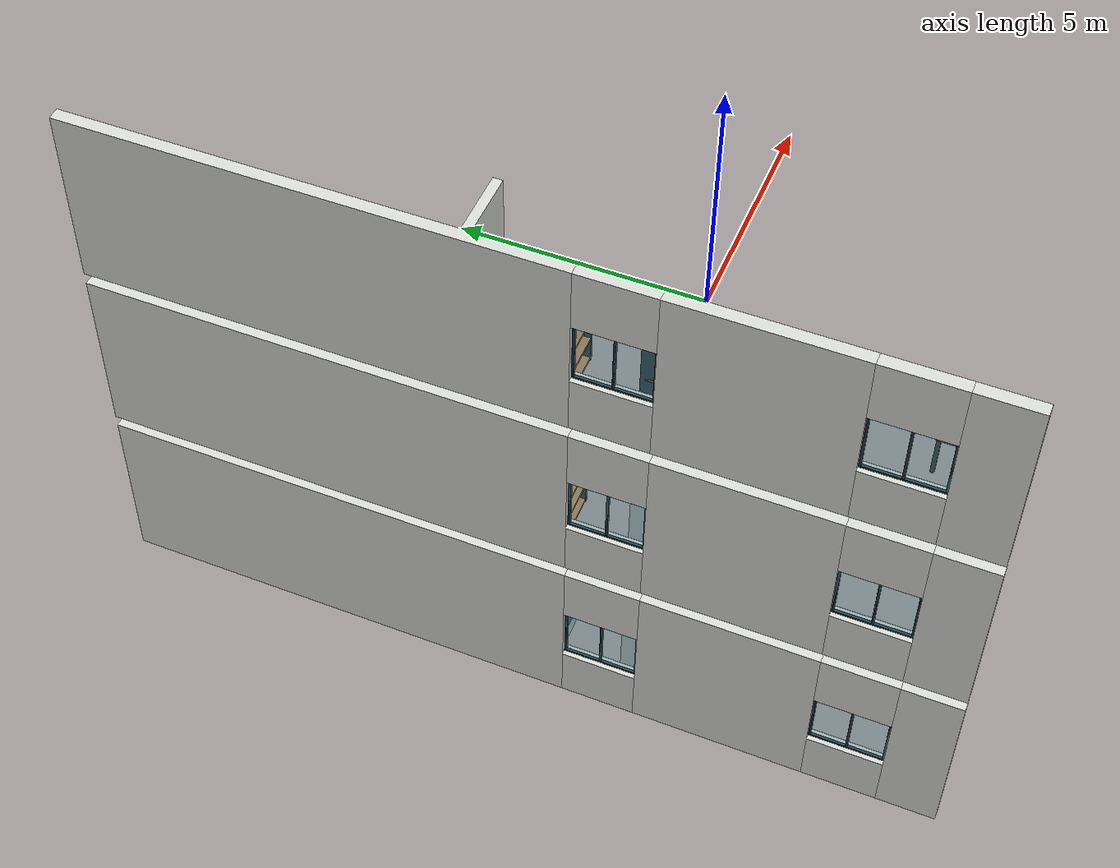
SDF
<sdf version="1.6">
 <world name="three_floor">
  <model name="f1_wall_001">
   <static>true</static>
   <pose>-8.9 0 1.5 0 0 0</pose>
   <link name="f1_wall_001_link">
    <collision name="f1_wall_001_link_panel_0_collision">
     <pose>0 -6.425 0 0 0 0</pose>
     <geometry><box><size>0.2 0.95 3</size></box></geometry>
    </collision>
    <visual name="f1_wall_001_link_panel_0_visual">
     <pose>0 -6.425 0 0 0 0</pose>
     <geometry><box><size>0.2 0.95 3</size></box></geometry>
     <material><ambient>.84 .85 .83 1</ambient><diffuse>.84 .85 .83 1</diffuse></material>
    </visual>
    <collision name="f1_wall_001_link_sill_0_collision">
     <pose>0 -5.35 -1.025 0 0 0</pose>
     <geometry><box><size>0.2 1.2 0.95</size></box></geometry>
    </collision>
    <visual name="f1_wall_001_link_sill_0_visual">
     <pose>0 -5.35 -1.025 0 0 0</pose>
     <geometry><box><size>0.2 1.2 0.95</size></box></geometry>
     <material><ambient>.84 .85 .83 1</ambient><diffuse>.84 .85 .83 1</diffuse></material>
    </visual>
    <collision name="f1_wall_001_link_header_0_collision">
     <pose>0 -5.35 1 0 0 0</pose>
     <geometry><box><size>0.2 1.2 1</size></box></geometry>
    </collision>
    <visual name="f1_wall_001_link_header_0_visual">
     <pose>0 -5.35 1 0 0 0</pose>
     <geometry><box><size>0.2 1.2 1</size></box></geometry>
     <material><ambient>.84 .85 .83 1</ambient><diffuse>.84 .85 .83 1</diffuse></material>
    </visual>
    <collision name="f1_wall_001_link_panel_1_collision">
     <pose>0 -3.35 0 0 0 0</pose>
     <geometry><box><size>0.2 2.8 3</size></box></geometry>
    </collision>
    <visual name="f1_wall_001_link_panel_1_visual">
     <pose>0 -3.35 0 0 0 0</pose>
     <geometry><box><size>0.2 2.8 3</size></box></geometry>
     <material><ambient>.84 .85 .83 1</ambient><diffuse>.84 .85 .83 1</diffuse></material>
    </visual>
    <collision name="f1_wall_001_link_sill_1_collision">
     <pose>0 -1.35 -1.025 0 0 0</pose>
     <geometry><box><size>0.2 1.2 0.95</size></box></geometry>
    </collision>
    <visual name="f1_wall_001_link_sill_1_visual">
     <pose>0 -1.35 -1.025 0 0 0</pose>
     <geometry><box><size>0.2 1.2 0.95</size></box></geometry>
     <material><ambient>.84 .85 .83 1</ambient><diffuse>.84 .85 .83 1</diffuse></material>
    </visual>
    <collision name="f1_wall_001_link_header_1_collision">
     <pose>0 -1.35 1 0 0 0</pose>
     <geometry><box><size>0.2 1.2 1</size></box></geometry>
    </collision>
    <visual name="f1_wall_001_link_header_1_visual">
     <pose>0 -1.35 1 0 0 0</pose>
     <geometry><box><size>0.2 1.2 1</size></box></geometry>
     <material><ambient>.84 .85 .83 1</ambient><diffuse>.84 .85 .83 1</diffuse></material>
    </visual>
    <collision name="f1_wall_001_link_last_panel_collision">
     <pose>0 3.075 0 0 0 0</pose>
     <geometry><box><size>0.2 7.65 3</size></box></geometry>
    </collision>
    <visual name="f1_wall_001_link_last_panel_visual">
     <pose>0 3.075 0 0 0 0</pose>
     <geometry><box><size>0.2 7.65 3</size></box></geometry>
     <material><ambient>.84 .85 .83 1</ambient><diffuse>.84 .85 .83 1</diffuse></material>
    </visual>
   </link>
  </model>
  <model name="f1_wall_022">
   <static>true</static>
   <pose>-8.275 0.8 1.5 0 0 0</pose>
   <link name="f1_wall_022_link">
    <collision name="f1_wall_022_collision"><geometry><box><size>1.05 0.15 3</size></box></geometry></collision>
    <visual name="f1_wall_022_visual">
     <geometry><box><size>1.05 0.15 3</size></box></geometry>
     <material><ambient>.84 .85 .83 1</ambient><diffuse>.84 .85 .83 1</diffuse></material>
    </visual>
   </link>
  </model>
  <model name="f2_wall_006">
   <static>true</static>
   <pose>-8.9 0 4.7 0 0 0</pose>
   <link name="f2_wall_006_link">
    <collision name="f2_wall_006_link_panel_0_collision">
     <pose>0 -6.425 0 0 0 0</pose>
     <geometry><box><size>0.2 0.95 3</size></box></geometry>
    </collision>
    <visual name="f2_wall_006_link_panel_0_visual">
     <pose>0 -6.425 0 0 0 0</pose>
     <geometry><box><size>0.2 0.95 3</size></box></geometry>
     <material><ambient>.84 .85 .83 1</ambient><diffuse>.84 .85 .83 1</diffuse></material>
    </visual>
    <collision name="f2_wall_006_link_sill_0_collision">
     <pose>0 -5.35 -1.025 0 0 0</pose>
     <geometry><box><size>0.2 1.2 0.95</size></box></geometry>
    </collision>
    <visual name="f2_wall_006_link_sill_0_visual">
     <pose>0 -5.35 -1.025 0 0 0</pose>
     <geometry><box><size>0.2 1.2 0.95</size></box></geometry>
     <material><ambient>.84 .85 .83 1</ambient><diffuse>.84 .85 .83 1</diffuse></material>
    </visual>
    <collision name="f2_wall_006_link_header_0_collision">
     <pose>0 -5.35 1 0 0 0</pose>
     <geometry><box><size>0.2 1.2 1</size></box></geometry>
    </collision>
    <visual name="f2_wall_006_link_header_0_visual">
     <pose>0 -5.35 1 0 0 0</pose>
     <geometry><box><size>0.2 1.2 1</size></box></geometry>
     <material><ambient>.84 .85 .83 1</ambient><diffuse>.84 .85 .83 1</diffuse></material>
    </visual>
    <collision name="f2_wall_006_link_panel_1_collision">
     <pose>0 -3.35 0 0 0 0</pose>
     <geometry><box><size>0.2 2.8 3</size></box></geometry>
    </collision>
    <visual name="f2_wall_006_link_panel_1_visual">
     <pose>0 -3.35 0 0 0 0</pose>
     <geometry><box><size>0.2 2.8 3</size></box></geometry>
     <material><ambient>.84 .85 .83 1</ambient><diffuse>.84 .85 .83 1</diffuse></material>
    </visual>
    <collision name="f2_wall_006_link_sill_1_collision">
     <pose>0 -1.35 -1.025 0 0 0</pose>
     <geometry><box><size>0.2 1.2 0.95</size></box></geometry>
    </collision>
    <visual name="f2_wall_006_link_sill_1_visual">
     <pose>0 -1.35 -1.025 0 0 0</pose>
     <geometry><box><size>0.2 1.2 0.95</size></box></geometry>
     <material><ambient>.84 .85 .83 1</ambient><diffuse>.84 .85 .83 1</diffuse></material>
    </visual>
    <collision name="f2_wall_006_link_header_1_collision">
     <pose>0 -1.35 1 0 0 0</pose>
     <geometry><box><size>0.2 1.2 1</size></box></geometry>
    </collision>
    <visual name="f2_wall_006_link_header_1_visual">
     <pose>0 -1.35 1 0 0 0</pose>
     <geometry><box><size>0.2 1.2 1</size></box></geometry>
     <material><ambient>.84 .85 .83 1</ambient><diffuse>.84 .85 .83 1</diffuse></material>
    </visual>
    <collision name="f2_wall_006_link_last_panel_collision">
     <pose>0 3.075 0 0 0 0</pose>
     <geometry><box><size>0.2 7.65 3</size></box></geometry>
    </collision>
    <visual name="f2_wall_006_link_last_panel_visual">
     <pose>0 3.075 0 0 0 0</pose>
     <geometry><box><size>0.2 7.65 3</size></box></geometry>
     <material><ambient>.84 .85 .83 1</ambient><diffuse>.84 .85 .83 1</diffuse></material>
    </visual>
   </link>
  </model>
  <model name="f2_wall_022">
   <static>true</static>
   <pose>-8.275 0.8 4.7 0 0 0</pose>
   <link name="f2_wall_022_link">
    <collision name="f2_wall_022_collision"><geometry><box><size>1.05 0.15 3</size></box></geometry></collision>
    <visual name="f2_wall_022_visual">
     <geometry><box><size>1.05 0.15 3</size></box></geometry>
     <material><ambient>.84 .85 .83 1</ambient><diffuse>.84 .85 .83 1</diffuse></material>
    </visual>
   </link>
  </model>
  <model name="f3_wall_010">
   <static>true</static>
   <pose>-8.9 0 7.9 0 0 0</pose>
   <link name="f3_wall_010_link">
    <collision name="f3_wall_010_link_panel_0_collision">
     <pose>0 -6.425 0 0 0 0</pose>
     <geometry><box><size>0.2 0.95 3</size></box></geometry>
    </collision>
    <visual name="f3_wall_010_link_panel_0_visual">
     <pose>0 -6.425 0 0 0 0</pose>
     <geometry><box><size>0.2 0.95 3</size></box></geometry>
     <material><ambient>.84 .85 .83 1</ambient><diffuse>.84 .85 .83 1</diffuse></material>
    </visual>
    <collision name="f3_wall_010_link_sill_0_collision">
     <pose>0 -5.35 -1.025 0 0 0</pose>
     <geometry><box><size>0.2 1.2 0.95</size></box></geometry>
    </collision>
    <visual name="f3_wall_010_link_sill_0_visual">
     <pose>0 -5.35 -1.025 0 0 0</pose>
     <geometry><box><size>0.2 1.2 0.95</size></box></geometry>
     <material><ambient>.84 .85 .83 1</ambient><diffuse>.84 .85 .83 1</diffuse></material>
    </visual>
    <collision name="f3_wall_010_link_header_0_collision">
     <pose>0 -5.35 1 0 0 0</pose>
     <geometry><box><size>0.2 1.2 1</size></box></geometry>
    </collision>
    <visual name="f3_wall_010_link_header_0_visual">
     <pose>0 -5.35 1 0 0 0</pose>
     <geometry><box><size>0.2 1.2 1</size></box></geometry>
     <material><ambient>.84 .85 .83 1</ambient><diffuse>.84 .85 .83 1</diffuse></material>
    </visual>
    <collision name="f3_wall_010_link_panel_1_collision">
     <pose>0 -3.35 0 0 0 0</pose>
     <geometry><box><size>0.2 2.8 3</size></box></geometry>
    </collision>
    <visual name="f3_wall_010_link_panel_1_visual">
     <pose>0 -3.35 0 0 0 0</pose>
     <geometry><box><size>0.2 2.8 3</size></box></geometry>
     <material><ambient>.84 .85 .83 1</ambient><diffuse>.84 .85 .83 1</diffuse></material>
    </visual>
    <collision name="f3_wall_010_link_sill_1_collision">
     <pose>0 -1.35 -1.025 0 0 0</pose>
     <geometry><box><size>0.2 1.2 0.95</size></box></geometry>
    </collision>
    <visual name="f3_wall_010_link_sill_1_visual">
     <pose>0 -1.35 -1.025 0 0 0</pose>
     <geometry><box><size>0.2 1.2 0.95</size></box></geometry>
     <material><ambient>.84 .85 .83 1</ambient><diffuse>.84 .85 .83 1</diffuse></material>
    </visual>
    <collision name="f3_wall_010_link_header_1_collision">
     <pose>0 -1.35 1 0 0 0</pose>
     <geometry><box><size>0.2 1.2 1</size></box></geometry>
    </collision>
    <visual name="f3_wall_010_link_header_1_visual">
     <pose>0 -1.35 1 0 0 0</pose>
     <geometry><box><size>0.2 1.2 1</size></box></geometry>
     <material><ambient>.84 .85 .83 1</ambient><diffuse>.84 .85 .83 1</diffuse></material>
    </visual>
    <collision name="f3_wall_010_link_last_panel_collision">
     <pose>0 3.075 0 0 0 0</pose>
     <geometry><box><size>0.2 7.65 3</size></box></geometry>
    </collision>
    <visual name="f3_wall_010_link_last_panel_visual">
     <pose>0 3.075 0 0 0 0</pose>
     <geometry><box><size>0.2 7.65 3</size></box></geometry>
     <material><ambient>.84 .85 .83 1</ambient><diffuse>.84 .85 .83 1</diffuse></material>
    </visual>
   </link>
  </model>
  <model name="f3_wall_022">
   <static>true</static>
   <pose>-8.275 0.8 7.9 0 0 0</pose>
   <link name="f3_wall_022_link">
    <collision name="f3_wall_022_collision"><geometry><box><size>1.05 0.15 3</size></box></geometry></collision>
    <visual name="f3_wall_022_visual">
     <geometry><box><size>1.05 0.15 3</size></box></geometry>
     <material><ambient>.84 .85 .83 1</ambient><diffuse>.84 .85 .83 1</diffuse></material>
    </visual>
   </link>
  </model>
  <model name="f1_s2_window_01">
   <static>true</static>
   <pose>-8.9 -5.35 1.475 0 0 0</pose>
   <link name="f1_s2_window_01_link">
    <collision name="f1_s2_window_01_link_glass_collision">
     <geometry><box><size>0.045 1.2 1.05</size></box></geometry>
    </collision>
    <visual name="f1_s2_window_01_link_glass_visual">
     <geometry><box><size>0.045 1.2 1.05</size></box></geometry>
     <material><ambient>0.44 0.76 0.83 1</ambient><diffuse>0.44 0.76 0.83 1</diffuse></material>
     <transparency>0.65</transparency>
    </visual>
    <collision name="f1_s2_window_01_link_mullion_-0.58_collision">
     <pose>0 -0.58 0 0 0 0</pose>
     <geometry><box><size>0.045 0.035 1.05</size></box></geometry>
    </collision>
    <visual name="f1_s2_window_01_link_mullion_-0.58_visual">
     <pose>0 -0.58 0 0 0 0</pose>
     <geometry><box><size>0.045 0.035 1.05</size></box></geometry>
     <material><ambient>0.15 0.2 0.24 1</ambient><diffuse>0.15 0.2 0.24 1</diffuse></material>
    </visual>
    <collision name="f1_s2_window_01_link_mullion_0.58_collision">
     <pose>0 0.58 0 0 0 0</pose>
     <geometry><box><size>0.045 0.035 1.05</size></box></geometry>
    </collision>
    <visual name="f1_s2_window_01_link_mullion_0.58_visual">
     <pose>0 0.58 0 0 0 0</pose>
     <geometry><box><size>0.045 0.035 1.05</size></box></geometry>
     <material><ambient>0.15 0.2 0.24 1</ambient><diffuse>0.15 0.2 0.24 1</diffuse></material>
    </visual>
    <collision name="f1_s2_window_01_link_mullion_0_collision">
     <geometry><box><size>0.045 0.035 1.05</size></box></geometry>
    </collision>
    <visual name="f1_s2_window_01_link_mullion_0_visual">
     <geometry><box><size>0.045 0.035 1.05</size></box></geometry>
     <material><ambient>0.15 0.2 0.24 1</ambient><diffuse>0.15 0.2 0.24 1</diffuse></material>
    </visual>
    <collision name="f1_s2_window_01_link_frame_-0.51_collision">
     <pose>0 0 -0.51 0 0 0</pose>
     <geometry><box><size>0.045 1.2 0.03</size></box></geometry>
    </collision>
    <visual name="f1_s2_window_01_link_frame_-0.51_visual">
     <pose>0 0 -0.51 0 0 0</pose>
     <geometry><box><size>0.045 1.2 0.03</size></box></geometry>
     <material><ambient>0.15 0.2 0.24 1</ambient><diffuse>0.15 0.2 0.24 1</diffuse></material>
    </visual>
    <collision name="f1_s2_window_01_link_frame_0.51_collision">
     <pose>0 0 0.51 0 0 0</pose>
     <geometry><box><size>0.045 1.2 0.03</size></box></geometry>
    </collision>
    <visual name="f1_s2_window_01_link_frame_0.51_visual">
     <pose>0 0 0.51 0 0 0</pose>
     <geometry><box><size>0.045 1.2 0.03</size></box></geometry>
     <material><ambient>0.15 0.2 0.24 1</ambient><diffuse>0.15 0.2 0.24 1</diffuse></material>
    </visual>
   </link>
  </model>
  <model name="f1_s2_window_02">
   <static>true</static>
   <pose>-8.9 -1.35 1.475 0 0 0</pose>
   <link name="f1_s2_window_02_link">
    <collision name="f1_s2_window_02_link_glass_collision">
     <geometry><box><size>0.045 1.2 1.05</size></box></geometry>
    </collision>
    <visual name="f1_s2_window_02_link_glass_visual">
     <geometry><box><size>0.045 1.2 1.05</size></box></geometry>
     <material><ambient>0.44 0.76 0.83 1</ambient><diffuse>0.44 0.76 0.83 1</diffuse></material>
     <transparency>0.65</transparency>
    </visual>
    <collision name="f1_s2_window_02_link_mullion_-0.58_collision">
     <pose>0 -0.58 0 0 0 0</pose>
     <geometry><box><size>0.045 0.035 1.05</size></box></geometry>
    </collision>
    <visual name="f1_s2_window_02_link_mullion_-0.58_visual">
     <pose>0 -0.58 0 0 0 0</pose>
     <geometry><box><size>0.045 0.035 1.05</size></box></geometry>
     <material><ambient>0.15 0.2 0.24 1</ambient><diffuse>0.15 0.2 0.24 1</diffuse></material>
    </visual>
    <collision name="f1_s2_window_02_link_mullion_0.58_collision">
     <pose>0 0.58 0 0 0 0</pose>
     <geometry><box><size>0.045 0.035 1.05</size></box></geometry>
    </collision>
    <visual name="f1_s2_window_02_link_mullion_0.58_visual">
     <pose>0 0.58 0 0 0 0</pose>
     <geometry><box><size>0.045 0.035 1.05</size></box></geometry>
     <material><ambient>0.15 0.2 0.24 1</ambient><diffuse>0.15 0.2 0.24 1</diffuse></material>
    </visual>
    <collision name="f1_s2_window_02_link_mullion_0_collision">
     <geometry><box><size>0.045 0.035 1.05</size></box></geometry>
    </collision>
    <visual name="f1_s2_window_02_link_mullion_0_visual">
     <geometry><box><size>0.045 0.035 1.05</size></box></geometry>
     <material><ambient>0.15 0.2 0.24 1</ambient><diffuse>0.15 0.2 0.24 1</diffuse></material>
    </visual>
    <collision name="f1_s2_window_02_link_frame_-0.51_collision">
     <pose>0 0 -0.51 0 0 0</pose>
     <geometry><box><size>0.045 1.2 0.03</size></box></geometry>
    </collision>
    <visual name="f1_s2_window_02_link_frame_-0.51_visual">
     <pose>0 0 -0.51 0 0 0</pose>
     <geometry><box><size>0.045 1.2 0.03</size></box></geometry>
     <material><ambient>0.15 0.2 0.24 1</ambient><diffuse>0.15 0.2 0.24 1</diffuse></material>
    </visual>
    <collision name="f1_s2_window_02_link_frame_0.51_collision">
     <pose>0 0 0.51 0 0 0</pose>
     <geometry><box><size>0.045 1.2 0.03</size></box></geometry>
    </collision>
    <visual name="f1_s2_window_02_link_frame_0.51_visual">
     <pose>0 0 0.51 0 0 0</pose>
     <geometry><box><size>0.045 1.2 0.03</size></box></geometry>
     <material><ambient>0.15 0.2 0.24 1</ambient><diffuse>0.15 0.2 0.24 1</diffuse></material>
    </visual>
   </link>
  </model>
  <model name="f2_s2_window_12">
   <static>true</static>
   <pose>-8.9 -5.35 4.675 0 0 0</pose>
   <link name="f2_s2_window_12_link">
    <collision name="f2_s2_window_12_link_glass_collision">
     <geometry><box><size>0.045 1.2 1.05</size></box></geometry>
    </collision>
    <visual name="f2_s2_window_12_link_glass_visual">
     <geometry><box><size>0.045 1.2 1.05</size></box></geometry>
     <material><ambient>0.44 0.76 0.83 1</ambient><diffuse>0.44 0.76 0.83 1</diffuse></material>
     <transparency>0.65</transparency>
    </visual>
    <collision name="f2_s2_window_12_link_mullion_-0.58_collision">
     <pose>0 -0.58 0 0 0 0</pose>
     <geometry><box><size>0.045 0.035 1.05</size></box></geometry>
    </collision>
    <visual name="f2_s2_window_12_link_mullion_-0.58_visual">
     <pose>0 -0.58 0 0 0 0</pose>
     <geometry><box><size>0.045 0.035 1.05</size></box></geometry>
     <material><ambient>0.15 0.2 0.24 1</ambient><diffuse>0.15 0.2 0.24 1</diffuse></material>
    </visual>
    <collision name="f2_s2_window_12_link_mullion_0.58_collision">
     <pose>0 0.58 0 0 0 0</pose>
     <geometry><box><size>0.045 0.035 1.05</size></box></geometry>
    </collision>
    <visual name="f2_s2_window_12_link_mullion_0.58_visual">
     <pose>0 0.58 0 0 0 0</pose>
     <geometry><box><size>0.045 0.035 1.05</size></box></geometry>
     <material><ambient>0.15 0.2 0.24 1</ambient><diffuse>0.15 0.2 0.24 1</diffuse></material>
    </visual>
    <collision name="f2_s2_window_12_link_mullion_0_collision">
     <geometry><box><size>0.045 0.035 1.05</size></box></geometry>
    </collision>
    <visual name="f2_s2_window_12_link_mullion_0_visual">
     <geometry><box><size>0.045 0.035 1.05</size></box></geometry>
     <material><ambient>0.15 0.2 0.24 1</ambient><diffuse>0.15 0.2 0.24 1</diffuse></material>
    </visual>
    <collision name="f2_s2_window_12_link_frame_-0.51_collision">
     <pose>0 0 -0.51 0 0 0</pose>
     <geometry><box><size>0.045 1.2 0.03</size></box></geometry>
    </collision>
    <visual name="f2_s2_window_12_link_frame_-0.51_visual">
     <pose>0 0 -0.51 0 0 0</pose>
     <geometry><box><size>0.045 1.2 0.03</size></box></geometry>
     <material><ambient>0.15 0.2 0.24 1</ambient><diffuse>0.15 0.2 0.24 1</diffuse></material>
    </visual>
    <collision name="f2_s2_window_12_link_frame_0.51_collision">
     <pose>0 0 0.51 0 0 0</pose>
     <geometry><box><size>0.045 1.2 0.03</size></box></geometry>
    </collision>
    <visual name="f2_s2_window_12_link_frame_0.51_visual">
     <pose>0 0 0.51 0 0 0</pose>
     <geometry><box><size>0.045 1.2 0.03</size></box></geometry>
     <material><ambient>0.15 0.2 0.24 1</ambient><diffuse>0.15 0.2 0.24 1</diffuse></material>
    </visual>
   </link>
  </model>
  <model name="f2_s2_window_13">
   <static>true</static>
   <pose>-8.9 -1.35 4.675 0 0 0</pose>
   <link name="f2_s2_window_13_link">
    <collision name="f2_s2_window_13_link_glass_collision">
     <geometry><box><size>0.045 1.2 1.05</size></box></geometry>
    </collision>
    <visual name="f2_s2_window_13_link_glass_visual">
     <geometry><box><size>0.045 1.2 1.05</size></box></geometry>
     <material><ambient>0.44 0.76 0.83 1</ambient><diffuse>0.44 0.76 0.83 1</diffuse></material>
     <transparency>0.65</transparency>
    </visual>
    <collision name="f2_s2_window_13_link_mullion_-0.58_collision">
     <pose>0 -0.58 0 0 0 0</pose>
     <geometry><box><size>0.045 0.035 1.05</size></box></geometry>
    </collision>
    <visual name="f2_s2_window_13_link_mullion_-0.58_visual">
     <pose>0 -0.58 0 0 0 0</pose>
     <geometry><box><size>0.045 0.035 1.05</size></box></geometry>
     <material><ambient>0.15 0.2 0.24 1</ambient><diffuse>0.15 0.2 0.24 1</diffuse></material>
    </visual>
    <collision name="f2_s2_window_13_link_mullion_0.58_collision">
     <pose>0 0.58 0 0 0 0</pose>
     <geometry><box><size>0.045 0.035 1.05</size></box></geometry>
    </collision>
    <visual name="f2_s2_window_13_link_mullion_0.58_visual">
     <pose>0 0.58 0 0 0 0</pose>
     <geometry><box><size>0.045 0.035 1.05</size></box></geometry>
     <material><ambient>0.15 0.2 0.24 1</ambient><diffuse>0.15 0.2 0.24 1</diffuse></material>
    </visual>
    <collision name="f2_s2_window_13_link_mullion_0_collision">
     <geometry><box><size>0.045 0.035 1.05</size></box></geometry>
    </collision>
    <visual name="f2_s2_window_13_link_mullion_0_visual">
     <geometry><box><size>0.045 0.035 1.05</size></box></geometry>
     <material><ambient>0.15 0.2 0.24 1</ambient><diffuse>0.15 0.2 0.24 1</diffuse></material>
    </visual>
    <collision name="f2_s2_window_13_link_frame_-0.51_collision">
     <pose>0 0 -0.51 0 0 0</pose>
     <geometry><box><size>0.045 1.2 0.03</size></box></geometry>
    </collision>
    <visual name="f2_s2_window_13_link_frame_-0.51_visual">
     <pose>0 0 -0.51 0 0 0</pose>
     <geometry><box><size>0.045 1.2 0.03</size></box></geometry>
     <material><ambient>0.15 0.2 0.24 1</ambient><diffuse>0.15 0.2 0.24 1</diffuse></material>
    </visual>
    <collision name="f2_s2_window_13_link_frame_0.51_collision">
     <pose>0 0 0.51 0 0 0</pose>
     <geometry><box><size>0.045 1.2 0.03</size></box></geometry>
    </collision>
    <visual name="f2_s2_window_13_link_frame_0.51_visual">
     <pose>0 0 0.51 0 0 0</pose>
     <geometry><box><size>0.045 1.2 0.03</size></box></geometry>
     <material><ambient>0.15 0.2 0.24 1</ambient><diffuse>0.15 0.2 0.24 1</diffuse></material>
    </visual>
   </link>
  </model>
  <model name="f3_s2_window_24">
   <static>true</static>
   <pose>-8.9 -5.35 7.875 0 0 0</pose>
   <link name="f3_s2_window_24_link">
    <collision name="f3_s2_window_24_link_glass_collision">
     <geometry><box><size>0.045 1.2 1.05</size></box></geometry>
    </collision>
    <visual name="f3_s2_window_24_link_glass_visual">
     <geometry><box><size>0.045 1.2 1.05</size></box></geometry>
     <material><ambient>0.44 0.76 0.83 1</ambient><diffuse>0.44 0.76 0.83 1</diffuse></material>
     <transparency>0.65</transparency>
    </visual>
    <collision name="f3_s2_window_24_link_mullion_-0.58_collision">
     <pose>0 -0.58 0 0 0 0</pose>
     <geometry><box><size>0.045 0.035 1.05</size></box></geometry>
    </collision>
    <visual name="f3_s2_window_24_link_mullion_-0.58_visual">
     <pose>0 -0.58 0 0 0 0</pose>
     <geometry><box><size>0.045 0.035 1.05</size></box></geometry>
     <material><ambient>0.15 0.2 0.24 1</ambient><diffuse>0.15 0.2 0.24 1</diffuse></material>
    </visual>
    <collision name="f3_s2_window_24_link_mullion_0.58_collision">
     <pose>0 0.58 0 0 0 0</pose>
     <geometry><box><size>0.045 0.035 1.05</size></box></geometry>
    </collision>
    <visual name="f3_s2_window_24_link_mullion_0.58_visual">
     <pose>0 0.58 0 0 0 0</pose>
     <geometry><box><size>0.045 0.035 1.05</size></box></geometry>
     <material><ambient>0.15 0.2 0.24 1</ambient><diffuse>0.15 0.2 0.24 1</diffuse></material>
    </visual>
    <collision name="f3_s2_window_24_link_mullion_0_collision">
     <geometry><box><size>0.045 0.035 1.05</size></box></geometry>
    </collision>
    <visual name="f3_s2_window_24_link_mullion_0_visual">
     <geometry><box><size>0.045 0.035 1.05</size></box></geometry>
     <material><ambient>0.15 0.2 0.24 1</ambient><diffuse>0.15 0.2 0.24 1</diffuse></material>
    </visual>
    <collision name="f3_s2_window_24_link_frame_-0.51_collision">
     <pose>0 0 -0.51 0 0 0</pose>
     <geometry><box><size>0.045 1.2 0.03</size></box></geometry>
    </collision>
    <visual name="f3_s2_window_24_link_frame_-0.51_visual">
     <pose>0 0 -0.51 0 0 0</pose>
     <geometry><box><size>0.045 1.2 0.03</size></box></geometry>
     <material><ambient>0.15 0.2 0.24 1</ambient><diffuse>0.15 0.2 0.24 1</diffuse></material>
    </visual>
    <collision name="f3_s2_window_24_link_frame_0.51_collision">
     <pose>0 0 0.51 0 0 0</pose>
     <geometry><box><size>0.045 1.2 0.03</size></box></geometry>
    </collision>
    <visual name="f3_s2_window_24_link_frame_0.51_visual">
     <pose>0 0 0.51 0 0 0</pose>
     <geometry><box><size>0.045 1.2 0.03</size></box></geometry>
     <material><ambient>0.15 0.2 0.24 1</ambient><diffuse>0.15 0.2 0.24 1</diffuse></material>
    </visual>
   </link>
  </model>
  <model name="f3_s2_window_25">
   <static>true</static>
   <pose>-8.9 -1.35 7.875 0 0 0</pose>
   <link name="f3_s2_window_25_link">
    <collision name="f3_s2_window_25_link_glass_collision">
     <geometry><box><size>0.045 1.2 1.05</size></box></geometry>
    </collision>
    <visual name="f3_s2_window_25_link_glass_visual">
     <geometry><box><size>0.045 1.2 1.05</size></box></geometry>
     <material><ambient>0.44 0.76 0.83 1</ambient><diffuse>0.44 0.76 0.83 1</diffuse></material>
     <transparency>0.65</transparency>
    </visual>
    <collision name="f3_s2_window_25_link_mullion_-0.58_collision">
     <pose>0 -0.58 0 0 0 0</pose>
     <geometry><box><size>0.045 0.035 1.05</size></box></geometry>
    </collision>
    <visual name="f3_s2_window_25_link_mullion_-0.58_visual">
     <pose>0 -0.58 0 0 0 0</pose>
     <geometry><box><size>0.045 0.035 1.05</size></box></geometry>
     <material><ambient>0.15 0.2 0.24 1</ambient><diffuse>0.15 0.2 0.24 1</diffuse></material>
    </visual>
    <collision name="f3_s2_window_25_link_mullion_0.58_collision">
     <pose>0 0.58 0 0 0 0</pose>
     <geometry><box><size>0.045 0.035 1.05</size></box></geometry>
    </collision>
    <visual name="f3_s2_window_25_link_mullion_0.58_visual">
     <pose>0 0.58 0 0 0 0</pose>
     <geometry><box><size>0.045 0.035 1.05</size></box></geometry>
     <material><ambient>0.15 0.2 0.24 1</ambient><diffuse>0.15 0.2 0.24 1</diffuse></material>
    </visual>
    <collision name="f3_s2_window_25_link_mullion_0_collision">
     <geometry><box><size>0.045 0.035 1.05</size></box></geometry>
    </collision>
    <visual name="f3_s2_window_25_link_mullion_0_visual">
     <geometry><box><size>0.045 0.035 1.05</size></box></geometry>
     <material><ambient>0.15 0.2 0.24 1</ambient><diffuse>0.15 0.2 0.24 1</diffuse></material>
    </visual>
    <collision name="f3_s2_window_25_link_frame_-0.51_collision">
     <pose>0 0 -0.51 0 0 0</pose>
     <geometry><box><size>0.045 1.2 0.03</size></box></geometry>
    </collision>
    <visual name="f3_s2_window_25_link_frame_-0.51_visual">
     <pose>0 0 -0.51 0 0 0</pose>
     <geometry><box><size>0.045 1.2 0.03</size></box></geometry>
     <material><ambient>0.15 0.2 0.24 1</ambient><diffuse>0.15 0.2 0.24 1</diffuse></material>
    </visual>
    <collision name="f3_s2_window_25_link_frame_0.51_collision">
     <pose>0 0 0.51 0 0 0</pose>
     <geometry><box><size>0.045 1.2 0.03</size></box></geometry>
    </collision>
    <visual name="f3_s2_window_25_link_frame_0.51_visual">
     <pose>0 0 0.51 0 0 0</pose>
     <geometry><box><size>0.045 1.2 0.03</size></box></geometry>
     <material><ambient>0.15 0.2 0.24 1</ambient><diffuse>0.15 0.2 0.24 1</diffuse></material>
    </visual>
   </link>
  </model>
  <model name="f1_s2_furniture_05_rack">
   <static>true</static>
   <pose>-8.05 -3.8 0 0 0 0</pose>
   <link name="f1_s2_furniture_05_rack_link">
    <collision name="f1_s2_furniture_05_rack_link_body_collision">
     <pose>0 0 0.85 0 0 0</pose>
     <geometry><box><size>0.75 0.4 1.7</size></box></geometry>
    </collision>
    <visual name="f1_s2_furniture_05_rack_link_body_visual">
     <pose>0 0 0.85 0 0 0</pose>
     <geometry><box><size>0.75 0.4 1.7</size></box></geometry>
     <material><ambient>0.88 0.89 0.88 1</ambient><diffuse>0.88 0.89 0.88 1</diffuse></material>
    </visual>
   </link>
  </model>
  <model name="f1_s2_furniture_06_cabinet">
   <static>true</static>
   <pose>-8.05 -1.75 0 0 0 0</pose>
   <link name="f1_s2_furniture_06_cabinet_link">
    <collision name="f1_s2_furniture_06_cabinet_link_body_collision">
     <pose>0 0 0.85 0 0 0</pose>
     <geometry><box><size>0.8 0.45 1.7</size></box></geometry>
    </collision>
    <visual name="f1_s2_furniture_06_cabinet_link_body_visual">
     <pose>0 0 0.85 0 0 0</pose>
     <geometry><box><size>0.8 0.45 1.7</size></box></geometry>
     <material><ambient>0.88 0.89 0.88 1</ambient><diffuse>0.88 0.89 0.88 1</diffuse></material>
    </visual>
    <collision name="f1_s2_furniture_06_cabinet_link_front_inset_collision">
     <pose>0 -0.226 0.935 0 0 0</pose>
     <geometry><box><size>0.68 0.002 1.224</size></box></geometry>
    </collision>
    <visual name="f1_s2_furniture_06_cabinet_link_front_inset_visual">
     <pose>0 -0.226 0.935 0 0 0</pose>
     <geometry><box><size>0.68 0.002 1.224</size></box></geometry>
     <material><ambient>0.12 0.46 0.52 1</ambient><diffuse>0.12 0.46 0.52 1</diffuse></material>
    </visual>
   </link>
  </model>
  <model name="f1_s2_furniture_07_cabinet">
   <static>true</static>
   <pose>-8.05 -0.25 0 0 0 0</pose>
   <link name="f1_s2_furniture_07_cabinet_link">
    <collision name="f1_s2_furniture_07_cabinet_link_body_collision">
     <pose>0 0 0.85 0 0 0</pose>
     <geometry><box><size>0.8 0.45 1.7</size></box></geometry>
    </collision>
    <visual name="f1_s2_furniture_07_cabinet_link_body_visual">
     <pose>0 0 0.85 0 0 0</pose>
     <geometry><box><size>0.8 0.45 1.7</size></box></geometry>
     <material><ambient>0.88 0.89 0.88 1</ambient><diffuse>0.88 0.89 0.88 1</diffuse></material>
    </visual>
    <collision name="f1_s2_furniture_07_cabinet_link_front_inset_collision">
     <pose>0 -0.226 0.935 0 0 0</pose>
     <geometry><box><size>0.68 0.002 1.224</size></box></geometry>
    </collision>
    <visual name="f1_s2_furniture_07_cabinet_link_front_inset_visual">
     <pose>0 -0.226 0.935 0 0 0</pose>
     <geometry><box><size>0.68 0.002 1.224</size></box></geometry>
     <material><ambient>0.12 0.46 0.52 1</ambient><diffuse>0.12 0.46 0.52 1</diffuse></material>
    </visual>
   </link>
  </model>
  <model name="f2_s2_furniture_32_cabinet">
   <static>true</static>
   <pose>-8.05 -1.75 3.2 0 0 0</pose>
   <link name="f2_s2_furniture_32_cabinet_link">
    <collision name="f2_s2_furniture_32_cabinet_link_body_collision">
     <pose>0 0 0.85 0 0 0</pose>
     <geometry><box><size>0.75 0.45 1.7</size></box></geometry>
    </collision>
    <visual name="f2_s2_furniture_32_cabinet_link_body_visual">
     <pose>0 0 0.85 0 0 0</pose>
     <geometry><box><size>0.75 0.45 1.7</size></box></geometry>
     <material><ambient>0.88 0.89 0.88 1</ambient><diffuse>0.88 0.89 0.88 1</diffuse></material>
    </visual>
    <collision name="f2_s2_furniture_32_cabinet_link_front_inset_collision">
     <pose>0 -0.226 0.935 0 0 0</pose>
     <geometry><box><size>0.6375 0.002 1.224</size></box></geometry>
    </collision>
    <visual name="f2_s2_furniture_32_cabinet_link_front_inset_visual">
     <pose>0 -0.226 0.935 0 0 0</pose>
     <geometry><box><size>0.6375 0.002 1.224</size></box></geometry>
     <material><ambient>0.12 0.46 0.52 1</ambient><diffuse>0.12 0.46 0.52 1</diffuse></material>
    </visual>
   </link>
  </model>
  <model name="f2_s2_furniture_33_shelf">
   <static>true</static>
   <pose>-8.05 -0.35 3.2 0 0 0</pose>
   <link name="f2_s2_furniture_33_shelf_link">
    <collision name="f2_s2_furniture_33_shelf_link_upright-0.35_collision">
     <pose>-0.35 0 0.8 0 0 0</pose>
     <geometry><box><size>0.05 0.45 1.6</size></box></geometry>
    </collision>
    <visual name="f2_s2_furniture_33_shelf_link_upright-0.35_visual">
     <pose>-0.35 0 0.8 0 0 0</pose>
     <geometry><box><size>0.05 0.45 1.6</size></box></geometry>
     <material><ambient>0.15 0.2 0.24 1</ambient><diffuse>0.15 0.2 0.24 1</diffuse></material>
    </visual>
    <collision name="f2_s2_furniture_33_shelf_link_upright0.35_collision">
     <pose>0.35 0 0.8 0 0 0</pose>
     <geometry><box><size>0.05 0.45 1.6</size></box></geometry>
    </collision>
    <visual name="f2_s2_furniture_33_shelf_link_upright0.35_visual">
     <pose>0.35 0 0.8 0 0 0</pose>
     <geometry><box><size>0.05 0.45 1.6</size></box></geometry>
     <material><ambient>0.15 0.2 0.24 1</ambient><diffuse>0.15 0.2 0.24 1</diffuse></material>
    </visual>
    <collision name="f2_s2_furniture_33_shelf_link_shelf0_collision">
     <pose>0 0 0.05 0 0 0</pose>
     <geometry><box><size>0.75 0.45 0.05</size></box></geometry>
    </collision>
    <visual name="f2_s2_furniture_33_shelf_link_shelf0_visual">
     <pose>0 0 0.05 0 0 0</pose>
     <geometry><box><size>0.75 0.45 0.05</size></box></geometry>
     <material><ambient>0.69 0.49 0.3 1</ambient><diffuse>0.69 0.49 0.3 1</diffuse></material>
    </visual>
    <collision name="f2_s2_furniture_33_shelf_link_shelf1_collision">
     <pose>0 0 0.425 0 0 0</pose>
     <geometry><box><size>0.75 0.45 0.05</size></box></geometry>
    </collision>
    <visual name="f2_s2_furniture_33_shelf_link_shelf1_visual">
     <pose>0 0 0.425 0 0 0</pose>
     <geometry><box><size>0.75 0.45 0.05</size></box></geometry>
     <material><ambient>0.69 0.49 0.3 1</ambient><diffuse>0.69 0.49 0.3 1</diffuse></material>
    </visual>
    <collision name="f2_s2_furniture_33_shelf_link_shelf2_collision">
     <pose>0 0 0.8 0 0 0</pose>
     <geometry><box><size>0.75 0.45 0.05</size></box></geometry>
    </collision>
    <visual name="f2_s2_furniture_33_shelf_link_shelf2_visual">
     <pose>0 0 0.8 0 0 0</pose>
     <geometry><box><size>0.75 0.45 0.05</size></box></geometry>
     <material><ambient>0.69 0.49 0.3 1</ambient><diffuse>0.69 0.49 0.3 1</diffuse></material>
    </visual>
    <collision name="f2_s2_furniture_33_shelf_link_shelf3_collision">
     <pose>0 0 1.175 0 0 0</pose>
     <geometry><box><size>0.75 0.45 0.05</size></box></geometry>
    </collision>
    <visual name="f2_s2_furniture_33_shelf_link_shelf3_visual">
     <pose>0 0 1.175 0 0 0</pose>
     <geometry><box><size>0.75 0.45 0.05</size></box></geometry>
     <material><ambient>0.69 0.49 0.3 1</ambient><diffuse>0.69 0.49 0.3 1</diffuse></material>
    </visual>
    <collision name="f2_s2_furniture_33_shelf_link_shelf4_collision">
     <pose>0 0 1.55 0 0 0</pose>
     <geometry><box><size>0.75 0.45 0.05</size></box></geometry>
    </collision>
    <visual name="f2_s2_furniture_33_shelf_link_shelf4_visual">
     <pose>0 0 1.55 0 0 0</pose>
     <geometry><box><size>0.75 0.45 0.05</size></box></geometry>
     <material><ambient>0.69 0.49 0.3 1</ambient><diffuse>0.69 0.49 0.3 1</diffuse></material>
    </visual>
    <collision name="f2_s2_furniture_33_shelf_link_back_collision">
     <pose>0 0.21 0.8 0 0 0</pose>
     <geometry><box><size>0.75 0.03 1.6</size></box></geometry>
    </collision>
    <visual name="f2_s2_furniture_33_shelf_link_back_visual">
     <pose>0 0.21 0.8 0 0 0</pose>
     <geometry><box><size>0.75 0.03 1.6</size></box></geometry>
     <material><ambient>0.15 0.2 0.24 1</ambient><diffuse>0.15 0.2 0.24 1</diffuse></material>
    </visual>
   </link>
  </model>
  <model name="f3_s2_furniture_56_desk">
   <static>true</static>
   <pose>-7.3 -5.85 6.4 0 0 0</pose>
   <link name="f3_s2_furniture_56_desk_link">
    <collision name="f3_s2_furniture_56_desk_link_top_collision">
     <pose>0 0 0.715 0 0 0</pose>
     <geometry><box><size>1.1 0.65 0.09</size></box></geometry>
    </collision>
    <visual name="f3_s2_furniture_56_desk_link_top_visual">
     <pose>0 0 0.715 0 0 0</pose>
     <geometry><box><size>1.1 0.65 0.09</size></box></geometry>
     <material><ambient>0.69 0.49 0.3 1</ambient><diffuse>0.69 0.49 0.3 1</diffuse></material>
    </visual>
    <collision name="f3_s2_furniture_56_desk_link_leg_-0.505_-0.28_collision">
     <pose>-0.505 -0.28 0.335 0 0 0</pose>
     <geometry><box><size>0.06 0.06 0.67</size></box></geometry>
    </collision>
    <visual name="f3_s2_furniture_56_desk_link_leg_-0.505_-0.28_visual">
     <pose>-0.505 -0.28 0.335 0 0 0</pose>
     <geometry><box><size>0.06 0.06 0.67</size></box></geometry>
     <material><ambient>0.15 0.2 0.24 1</ambient><diffuse>0.15 0.2 0.24 1</diffuse></material>
    </visual>
    <collision name="f3_s2_furniture_56_desk_link_leg_-0.505_0.28_collision">
     <pose>-0.505 0.28 0.335 0 0 0</pose>
     <geometry><box><size>0.06 0.06 0.67</size></box></geometry>
    </collision>
    <visual name="f3_s2_furniture_56_desk_link_leg_-0.505_0.28_visual">
     <pose>-0.505 0.28 0.335 0 0 0</pose>
     <geometry><box><size>0.06 0.06 0.67</size></box></geometry>
     <material><ambient>0.15 0.2 0.24 1</ambient><diffuse>0.15 0.2 0.24 1</diffuse></material>
    </visual>
    <collision name="f3_s2_furniture_56_desk_link_leg_0.505_-0.28_collision">
     <pose>0.505 -0.28 0.335 0 0 0</pose>
     <geometry><box><size>0.06 0.06 0.67</size></box></geometry>
    </collision>
    <visual name="f3_s2_furniture_56_desk_link_leg_0.505_-0.28_visual">
     <pose>0.505 -0.28 0.335 0 0 0</pose>
     <geometry><box><size>0.06 0.06 0.67</size></box></geometry>
     <material><ambient>0.15 0.2 0.24 1</ambient><diffuse>0.15 0.2 0.24 1</diffuse></material>
    </visual>
    <collision name="f3_s2_furniture_56_desk_link_leg_0.505_0.28_collision">
     <pose>0.505 0.28 0.335 0 0 0</pose>
     <geometry><box><size>0.06 0.06 0.67</size></box></geometry>
    </collision>
    <visual name="f3_s2_furniture_56_desk_link_leg_0.505_0.28_visual">
     <pose>0.505 0.28 0.335 0 0 0</pose>
     <geometry><box><size>0.06 0.06 0.67</size></box></geometry>
     <material><ambient>0.15 0.2 0.24 1</ambient><diffuse>0.15 0.2 0.24 1</diffuse></material>
    </visual>
   </link>
  </model>
  <model name="f3_s2_furniture_60_shelf">
   <static>true</static>
   <pose>-8.08 -3.8 6.4 0 0 0</pose>
   <link name="f3_s2_furniture_60_shelf_link">
    <collision name="f3_s2_furniture_60_shelf_link_upright-0.375_collision">
     <pose>-0.375 0 0.825 0 0 0</pose>
     <geometry><box><size>0.05 0.4 1.65</size></box></geometry>
    </collision>
    <visual name="f3_s2_furniture_60_shelf_link_upright-0.375_visual">
     <pose>-0.375 0 0.825 0 0 0</pose>
     <geometry><box><size>0.05 0.4 1.65</size></box></geometry>
     <material><ambient>0.15 0.2 0.24 1</ambient><diffuse>0.15 0.2 0.24 1</diffuse></material>
    </visual>
    <collision name="f3_s2_furniture_60_shelf_link_upright0.375_collision">
     <pose>0.375 0 0.825 0 0 0</pose>
     <geometry><box><size>0.05 0.4 1.65</size></box></geometry>
    </collision>
    <visual name="f3_s2_furniture_60_shelf_link_upright0.375_visual">
     <pose>0.375 0 0.825 0 0 0</pose>
     <geometry><box><size>0.05 0.4 1.65</size></box></geometry>
     <material><ambient>0.15 0.2 0.24 1</ambient><diffuse>0.15 0.2 0.24 1</diffuse></material>
    </visual>
    <collision name="f3_s2_furniture_60_shelf_link_shelf0_collision">
     <pose>0 0 0.05 0 0 0</pose>
     <geometry><box><size>0.8 0.4 0.05</size></box></geometry>
    </collision>
    <visual name="f3_s2_furniture_60_shelf_link_shelf0_visual">
     <pose>0 0 0.05 0 0 0</pose>
     <geometry><box><size>0.8 0.4 0.05</size></box></geometry>
     <material><ambient>0.69 0.49 0.3 1</ambient><diffuse>0.69 0.49 0.3 1</diffuse></material>
    </visual>
    <collision name="f3_s2_furniture_60_shelf_link_shelf1_collision">
     <pose>0 0 0.4375 0 0 0</pose>
     <geometry><box><size>0.8 0.4 0.05</size></box></geometry>
    </collision>
    <visual name="f3_s2_furniture_60_shelf_link_shelf1_visual">
     <pose>0 0 0.4375 0 0 0</pose>
     <geometry><box><size>0.8 0.4 0.05</size></box></geometry>
     <material><ambient>0.69 0.49 0.3 1</ambient><diffuse>0.69 0.49 0.3 1</diffuse></material>
    </visual>
    <collision name="f3_s2_furniture_60_shelf_link_shelf2_collision">
     <pose>0 0 0.825 0 0 0</pose>
     <geometry><box><size>0.8 0.4 0.05</size></box></geometry>
    </collision>
    <visual name="f3_s2_furniture_60_shelf_link_shelf2_visual">
     <pose>0 0 0.825 0 0 0</pose>
     <geometry><box><size>0.8 0.4 0.05</size></box></geometry>
     <material><ambient>0.69 0.49 0.3 1</ambient><diffuse>0.69 0.49 0.3 1</diffuse></material>
    </visual>
    <collision name="f3_s2_furniture_60_shelf_link_shelf3_collision">
     <pose>0 0 1.2125 0 0 0</pose>
     <geometry><box><size>0.8 0.4 0.05</size></box></geometry>
    </collision>
    <visual name="f3_s2_furniture_60_shelf_link_shelf3_visual">
     <pose>0 0 1.2125 0 0 0</pose>
     <geometry><box><size>0.8 0.4 0.05</size></box></geometry>
     <material><ambient>0.69 0.49 0.3 1</ambient><diffuse>0.69 0.49 0.3 1</diffuse></material>
    </visual>
    <collision name="f3_s2_furniture_60_shelf_link_shelf4_collision">
     <pose>0 0 1.6 0 0 0</pose>
     <geometry><box><size>0.8 0.4 0.05</size></box></geometry>
    </collision>
    <visual name="f3_s2_furniture_60_shelf_link_shelf4_visual">
     <pose>0 0 1.6 0 0 0</pose>
     <geometry><box><size>0.8 0.4 0.05</size></box></geometry>
     <material><ambient>0.69 0.49 0.3 1</ambient><diffuse>0.69 0.49 0.3 1</diffuse></material>
    </visual>
    <collision name="f3_s2_furniture_60_shelf_link_back_collision">
     <pose>0 0.185 0.825 0 0 0</pose>
     <geometry><box><size>0.8 0.03 1.65</size></box></geometry>
    </collision>
    <visual name="f3_s2_furniture_60_shelf_link_back_visual">
     <pose>0 0.185 0.825 0 0 0</pose>
     <geometry><box><size>0.8 0.03 1.65</size></box></geometry>
     <material><ambient>0.15 0.2 0.24 1</ambient><diffuse>0.15 0.2 0.24 1</diffuse></material>
    </visual>
   </link>
  </model>
  <model name="f3_s2_furniture_61_shelf">
   <static>true</static>
   <pose>-8.08 -1.8 6.4 0 0 0</pose>
   <link name="f3_s2_furniture_61_shelf_link">
    <collision name="f3_s2_furniture_61_shelf_link_upright-0.375_collision">
     <pose>-0.375 0 0.85 0 0 0</pose>
     <geometry><box><size>0.05 0.45 1.7</size></box></geometry>
    </collision>
    <visual name="f3_s2_furniture_61_shelf_link_upright-0.375_visual">
     <pose>-0.375 0 0.85 0 0 0</pose>
     <geometry><box><size>0.05 0.45 1.7</size></box></geometry>
     <material><ambient>0.15 0.2 0.24 1</ambient><diffuse>0.15 0.2 0.24 1</diffuse></material>
    </visual>
    <collision name="f3_s2_furniture_61_shelf_link_upright0.375_collision">
     <pose>0.375 0 0.85 0 0 0</pose>
     <geometry><box><size>0.05 0.45 1.7</size></box></geometry>
    </collision>
    <visual name="f3_s2_furniture_61_shelf_link_upright0.375_visual">
     <pose>0.375 0 0.85 0 0 0</pose>
     <geometry><box><size>0.05 0.45 1.7</size></box></geometry>
     <material><ambient>0.15 0.2 0.24 1</ambient><diffuse>0.15 0.2 0.24 1</diffuse></material>
    </visual>
    <collision name="f3_s2_furniture_61_shelf_link_shelf0_collision">
     <pose>0 0 0.05 0 0 0</pose>
     <geometry><box><size>0.8 0.45 0.05</size></box></geometry>
    </collision>
    <visual name="f3_s2_furniture_61_shelf_link_shelf0_visual">
     <pose>0 0 0.05 0 0 0</pose>
     <geometry><box><size>0.8 0.45 0.05</size></box></geometry>
     <material><ambient>0.69 0.49 0.3 1</ambient><diffuse>0.69 0.49 0.3 1</diffuse></material>
    </visual>
    <collision name="f3_s2_furniture_61_shelf_link_shelf1_collision">
     <pose>0 0 0.45 0 0 0</pose>
     <geometry><box><size>0.8 0.45 0.05</size></box></geometry>
    </collision>
    <visual name="f3_s2_furniture_61_shelf_link_shelf1_visual">
     <pose>0 0 0.45 0 0 0</pose>
     <geometry><box><size>0.8 0.45 0.05</size></box></geometry>
     <material><ambient>0.69 0.49 0.3 1</ambient><diffuse>0.69 0.49 0.3 1</diffuse></material>
    </visual>
    <collision name="f3_s2_furniture_61_shelf_link_shelf2_collision">
     <pose>0 0 0.85 0 0 0</pose>
     <geometry><box><size>0.8 0.45 0.05</size></box></geometry>
    </collision>
    <visual name="f3_s2_furniture_61_shelf_link_shelf2_visual">
     <pose>0 0 0.85 0 0 0</pose>
     <geometry><box><size>0.8 0.45 0.05</size></box></geometry>
     <material><ambient>0.69 0.49 0.3 1</ambient><diffuse>0.69 0.49 0.3 1</diffuse></material>
    </visual>
    <collision name="f3_s2_furniture_61_shelf_link_shelf3_collision">
     <pose>0 0 1.25 0 0 0</pose>
     <geometry><box><size>0.8 0.45 0.05</size></box></geometry>
    </collision>
    <visual name="f3_s2_furniture_61_shelf_link_shelf3_visual">
     <pose>0 0 1.25 0 0 0</pose>
     <geometry><box><size>0.8 0.45 0.05</size></box></geometry>
     <material><ambient>0.69 0.49 0.3 1</ambient><diffuse>0.69 0.49 0.3 1</diffuse></material>
    </visual>
    <collision name="f3_s2_furniture_61_shelf_link_shelf4_collision">
     <pose>0 0 1.65 0 0 0</pose>
     <geometry><box><size>0.8 0.45 0.05</size></box></geometry>
    </collision>
    <visual name="f3_s2_furniture_61_shelf_link_shelf4_visual">
     <pose>0 0 1.65 0 0 0</pose>
     <geometry><box><size>0.8 0.45 0.05</size></box></geometry>
     <material><ambient>0.69 0.49 0.3 1</ambient><diffuse>0.69 0.49 0.3 1</diffuse></material>
    </visual>
    <collision name="f3_s2_furniture_61_shelf_link_back_collision">
     <pose>0 0.21 0.85 0 0 0</pose>
     <geometry><box><size>0.8 0.03 1.7</size></box></geometry>
    </collision>
    <visual name="f3_s2_furniture_61_shelf_link_back_visual">
     <pose>0 0.21 0.85 0 0 0</pose>
     <geometry><box><size>0.8 0.03 1.7</size></box></geometry>
     <material><ambient>0.15 0.2 0.24 1</ambient><diffuse>0.15 0.2 0.24 1</diffuse></material>
    </visual>
   </link>
  </model>
  <model name="f3_s2_furniture_62_shelf">
   <static>true</static>
   <pose>-8.08 -0.35 6.4 0 0 0</pose>
   <link name="f3_s2_furniture_62_shelf_link">
    <collision name="f3_s2_furniture_62_shelf_link_upright-0.375_collision">
     <pose>-0.375 0 0.85 0 0 0</pose>
     <geometry><box><size>0.05 0.45 1.7</size></box></geometry>
    </collision>
    <visual name="f3_s2_furniture_62_shelf_link_upright-0.375_visual">
     <pose>-0.375 0 0.85 0 0 0</pose>
     <geometry><box><size>0.05 0.45 1.7</size></box></geometry>
     <material><ambient>0.15 0.2 0.24 1</ambient><diffuse>0.15 0.2 0.24 1</diffuse></material>
    </visual>
    <collision name="f3_s2_furniture_62_shelf_link_upright0.375_collision">
     <pose>0.375 0 0.85 0 0 0</pose>
     <geometry><box><size>0.05 0.45 1.7</size></box></geometry>
    </collision>
    <visual name="f3_s2_furniture_62_shelf_link_upright0.375_visual">
     <pose>0.375 0 0.85 0 0 0</pose>
     <geometry><box><size>0.05 0.45 1.7</size></box></geometry>
     <material><ambient>0.15 0.2 0.24 1</ambient><diffuse>0.15 0.2 0.24 1</diffuse></material>
    </visual>
    <collision name="f3_s2_furniture_62_shelf_link_shelf0_collision">
     <pose>0 0 0.05 0 0 0</pose>
     <geometry><box><size>0.8 0.45 0.05</size></box></geometry>
    </collision>
    <visual name="f3_s2_furniture_62_shelf_link_shelf0_visual">
     <pose>0 0 0.05 0 0 0</pose>
     <geometry><box><size>0.8 0.45 0.05</size></box></geometry>
     <material><ambient>0.69 0.49 0.3 1</ambient><diffuse>0.69 0.49 0.3 1</diffuse></material>
    </visual>
    <collision name="f3_s2_furniture_62_shelf_link_shelf1_collision">
     <pose>0 0 0.45 0 0 0</pose>
     <geometry><box><size>0.8 0.45 0.05</size></box></geometry>
    </collision>
    <visual name="f3_s2_furniture_62_shelf_link_shelf1_visual">
     <pose>0 0 0.45 0 0 0</pose>
     <geometry><box><size>0.8 0.45 0.05</size></box></geometry>
     <material><ambient>0.69 0.49 0.3 1</ambient><diffuse>0.69 0.49 0.3 1</diffuse></material>
    </visual>
    <collision name="f3_s2_furniture_62_shelf_link_shelf2_collision">
     <pose>0 0 0.85 0 0 0</pose>
     <geometry><box><size>0.8 0.45 0.05</size></box></geometry>
    </collision>
    <visual name="f3_s2_furniture_62_shelf_link_shelf2_visual">
     <pose>0 0 0.85 0 0 0</pose>
     <geometry><box><size>0.8 0.45 0.05</size></box></geometry>
     <material><ambient>0.69 0.49 0.3 1</ambient><diffuse>0.69 0.49 0.3 1</diffuse></material>
    </visual>
    <collision name="f3_s2_furniture_62_shelf_link_shelf3_collision">
     <pose>0 0 1.25 0 0 0</pose>
     <geometry><box><size>0.8 0.45 0.05</size></box></geometry>
    </collision>
    <visual name="f3_s2_furniture_62_shelf_link_shelf3_visual">
     <pose>0 0 1.25 0 0 0</pose>
     <geometry><box><size>0.8 0.45 0.05</size></box></geometry>
     <material><ambient>0.69 0.49 0.3 1</ambient><diffuse>0.69 0.49 0.3 1</diffuse></material>
    </visual>
    <collision name="f3_s2_furniture_62_shelf_link_shelf4_collision">
     <pose>0 0 1.65 0 0 0</pose>
     <geometry><box><size>0.8 0.45 0.05</size></box></geometry>
    </collision>
    <visual name="f3_s2_furniture_62_shelf_link_shelf4_visual">
     <pose>0 0 1.65 0 0 0</pose>
     <geometry><box><size>0.8 0.45 0.05</size></box></geometry>
     <material><ambient>0.69 0.49 0.3 1</ambient><diffuse>0.69 0.49 0.3 1</diffuse></material>
    </visual>
    <collision name="f3_s2_furniture_62_shelf_link_back_collision">
     <pose>0 0.21 0.85 0 0 0</pose>
     <geometry><box><size>0.8 0.03 1.7</size></box></geometry>
    </collision>
    <visual name="f3_s2_furniture_62_shelf_link_back_visual">
     <pose>0 0.21 0.85 0 0 0</pose>
     <geometry><box><size>0.8 0.03 1.7</size></box></geometry>
     <material><ambient>0.15 0.2 0.24 1</ambient><diffuse>0.15 0.2 0.24 1</diffuse></material>
    </visual>
   </link>
  </model>
 </world>
</sdf>
